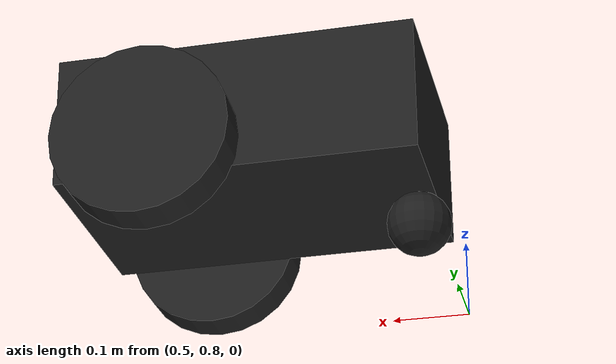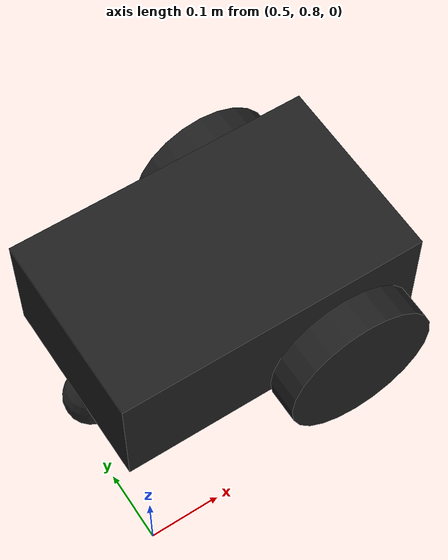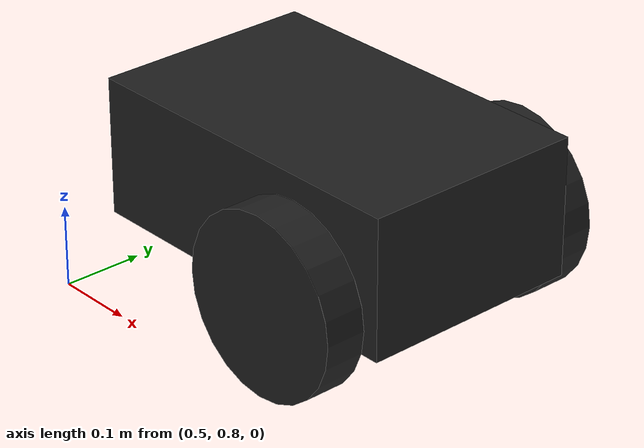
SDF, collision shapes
<?xml version='1.0'?>
<sdf version='1.6'>
  <model name='robot_model'>
    <pose frame=''>0.730029 1.00187 0 0 -0 0</pose>
    <link name='chassis'>
      <pose frame=''>0 0 0.16 0 -0 0</pose>
      <inertial>
        <mass>5.67</mass>
        <inertia>
          <ixx>0.07</ixx>
          <iyy>0.08</iyy>
          <izz>0.1</izz>
          <ixy>0</ixy>
          <ixz>0</ixz>
          <iyz>0</iyz>
        </inertia>
      </inertial>
      <collision name='collision'>
        <geometry>
          <box>
            <size>0.445 0.277 0.17</size>
          </box>
        </geometry>
        <max_contacts>10</max_contacts>
        <surface>
          <contact>
            <ode/>
          </contact>
          <bounce/>
          <friction>
            <torsional>
              <ode/>
            </torsional>
            <ode/>
          </friction>
        </surface>
      </collision>
      <collision name='castor_collision'>
        <pose frame=''>-0.2 0 -0.12 0 -0 0</pose>
        <geometry>
          <sphere>
            <radius>0.04</radius>
          </sphere>
        </geometry>
        <surface>
          <friction>
            <ode>
              <mu>0</mu>
              <mu2>0</mu2>
              <slip1>1</slip1>
              <slip2>1</slip2>
            </ode>
            <torsional>
              <ode/>
            </torsional>
          </friction>
          <contact>
            <ode/>
          </contact>
          <bounce/>
        </surface>
        <max_contacts>10</max_contacts>
      </collision>
      <visual name='visual'>
        <pose frame=''>0 0 0.04 0 -0 0</pose>
        <geometry>
          <mesh>
            <uri>model://chassis.dae</uri>
            <scale>1 1 1</scale>
          </mesh>
        </geometry>
      </visual>
      <visual name='castor_visual'>
        <pose frame=''>-0.2 0 -0.12 0 -0 0</pose>
        <geometry>
          <sphere>
            <radius>0.04</radius>
          </sphere>
        </geometry>
        <material>
          <script>
            <uri>file://media/materials/scripts/gazebo.material</uri>
            <name>Gazebo/FlatBlack</name>
          </script>
        </material>
      </visual>
      <self_collide>0</self_collide>
      <kinematic>0</kinematic>
    </link>
    <link name='right_wheel'>
      <pose frame=''>0.1 -0.17 0.11 -0 1.5707 1.5707</pose>
      <inertial>
        <mass>1.5</mass>
        <inertia>
          <ixx>0.0051</ixx>
          <iyy>0.0051</iyy>
          <izz>0.009</izz>
          <ixy>0</ixy>
          <ixz>0</ixz>
          <iyz>0</iyz>
        </inertia>
      </inertial>
      <collision name='collision'>
        <geometry>
          <cylinder>
            <radius>0.11</radius>
            <length>0.05</length>
          </cylinder>
        </geometry>
        <surface>
          <friction>
            <ode>
              <mu>100000</mu>
              <mu2>100000</mu2>
              <slip1>0</slip1>
              <slip2>0</slip2>
            </ode>
            <torsional>
              <ode/>
            </torsional>
          </friction>
          <contact>
            <ode/>
          </contact>
          <bounce/>
        </surface>
        <max_contacts>10</max_contacts>
      </collision>
      <visual name='visual'>
        <geometry>
          <cylinder>
            <radius>0.11</radius>
            <length>0.05</length>
          </cylinder>
        </geometry>
        <material>
          <script>
            <uri>file://media/materials/scripts/gazebo.material</uri>
            <name>Gazebo/FlatBlack</name>
          </script>
        </material>
      </visual>
      <self_collide>0</self_collide>
      <kinematic>0</kinematic>
    </link>
    <link name='left_wheel'>
      <pose frame=''>0.1 0.17 0.11 -0 1.5707 1.5707</pose>
      <inertial>
        <mass>1.5</mass>
        <inertia>
          <ixx>0.0051</ixx>
          <iyy>0.0051</iyy>
          <izz>0.009</izz>
          <ixy>0</ixy>
          <ixz>0</ixz>
          <iyz>0</iyz>
        </inertia>
      </inertial>
      <collision name='collision'>
        <geometry>
          <cylinder>
            <radius>0.11</radius>
            <length>0.05</length>
          </cylinder>
        </geometry>
        <surface>
          <friction>
            <ode>
              <mu>100000</mu>
              <mu2>100000</mu2>
              <slip1>0</slip1>
              <slip2>0</slip2>
            </ode>
            <torsional>
              <ode/>
            </torsional>
          </friction>
          <contact>
            <ode/>
          </contact>
          <bounce/>
        </surface>
        <max_contacts>10</max_contacts>
      </collision>
      <visual name='visual'>
        <geometry>
          <cylinder>
            <radius>0.11</radius>
            <length>0.05</length>
          </cylinder>
        </geometry>
        <material>
          <script>
            <uri>file://media/materials/scripts/gazebo.material</uri>
            <name>Gazebo/FlatBlack</name>
          </script>
        </material>
      </visual>
      <self_collide>0</self_collide>
      <kinematic>0</kinematic>
    </link>
    <joint name='left_wheel_hinge' type='revolute'>
      <pose frame=''>0 0 -0.03 0 -0 0</pose>
      <child>left_wheel</child>
      <parent>chassis</parent>
      <axis>
        <xyz>0 1 0</xyz>
        <use_parent_model_frame>1</use_parent_model_frame>
        <limit>
          <lower>-1e+16</lower>
          <upper>1e+16</upper>
        </limit>
        <dynamics>
          <spring_reference>0</spring_reference>
          <spring_stiffness>0</spring_stiffness>
        </dynamics>
      </axis>
    </joint>
    <joint name='right_wheel_hinge' type='revolute'>
      <pose frame=''>0 0 0.03 0 -0 0</pose>
      <child>right_wheel</child>
      <parent>chassis</parent>
      <axis>
        <xyz>0 1 0</xyz>
        <use_parent_model_frame>1</use_parent_model_frame>
        <limit>
          <lower>-1e+16</lower>
          <upper>1e+16</upper>
        </limit>
        <dynamics>
          <spring_reference>0</spring_reference>
          <spring_stiffness>0</spring_stiffness>
        </dynamics>
      </axis>
    </joint>
  </model>
</sdf>
